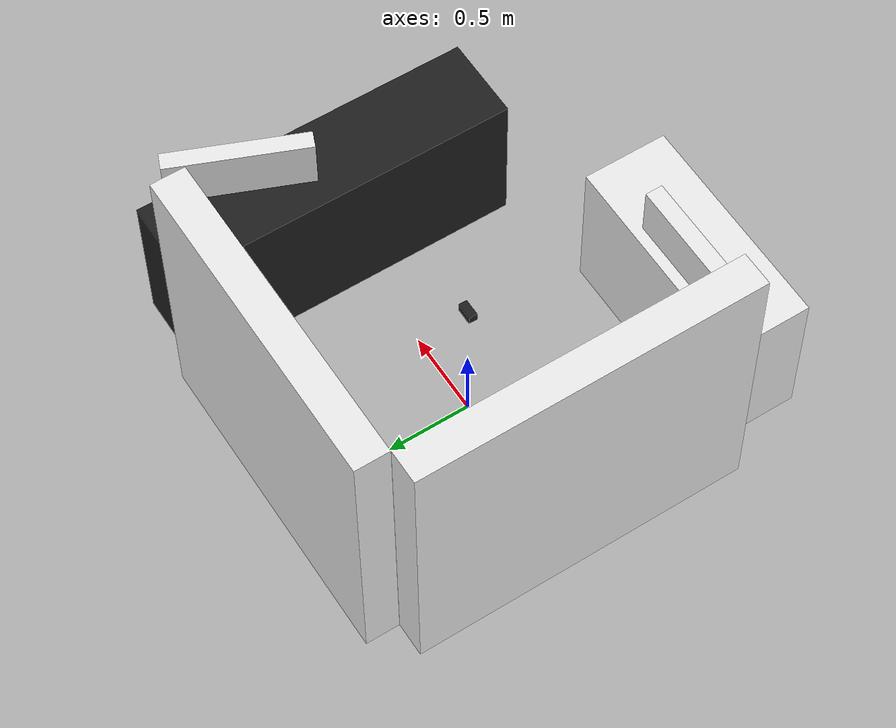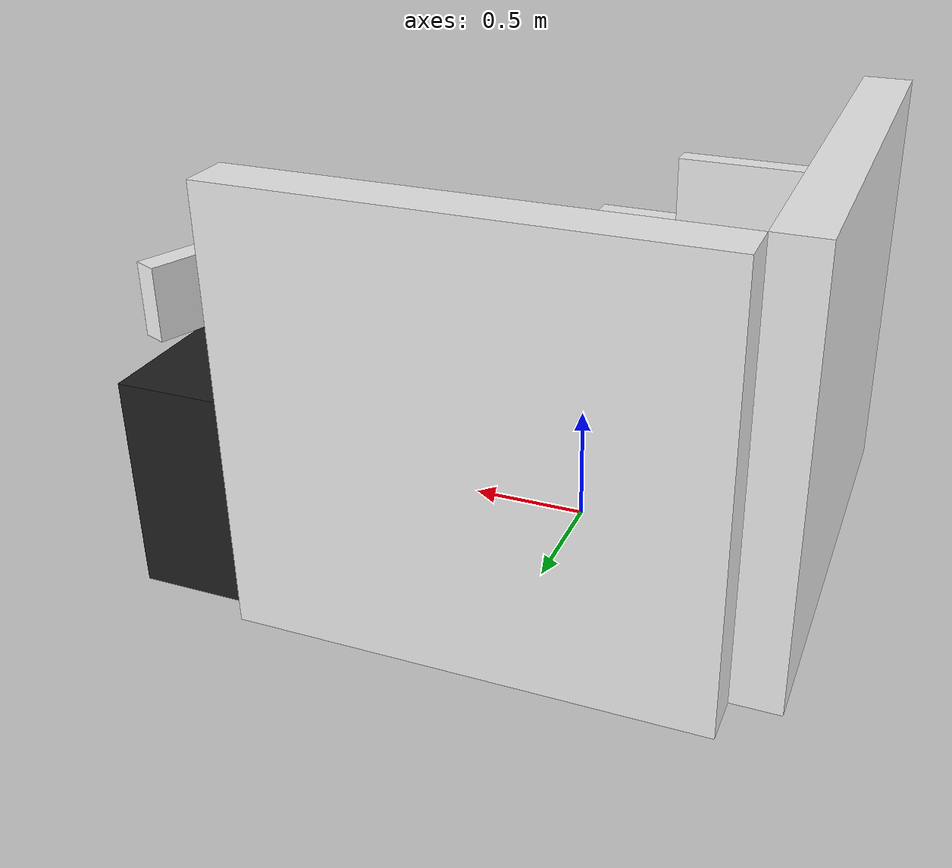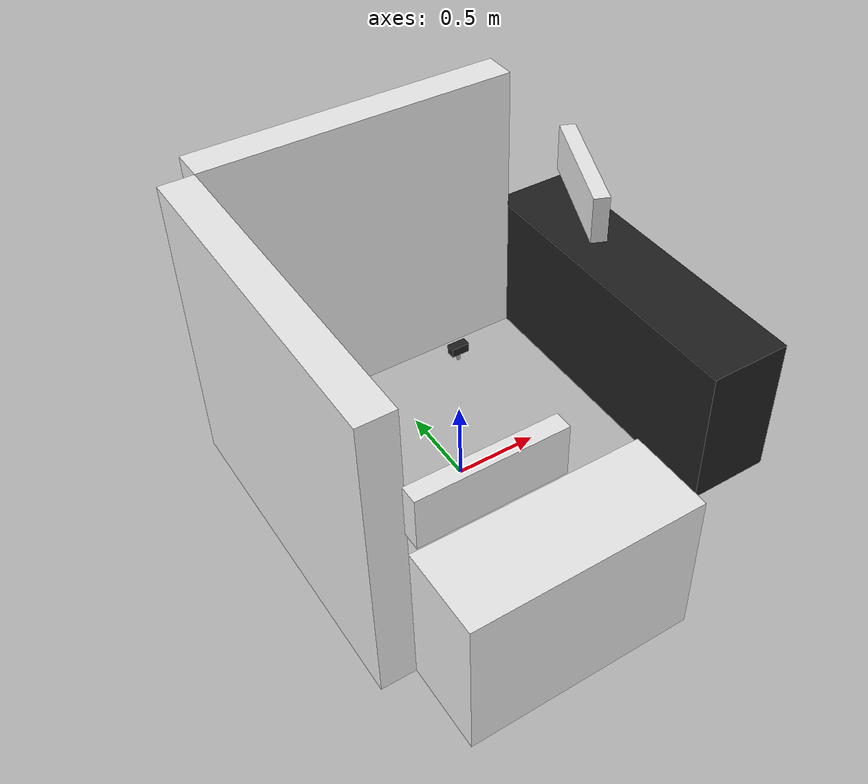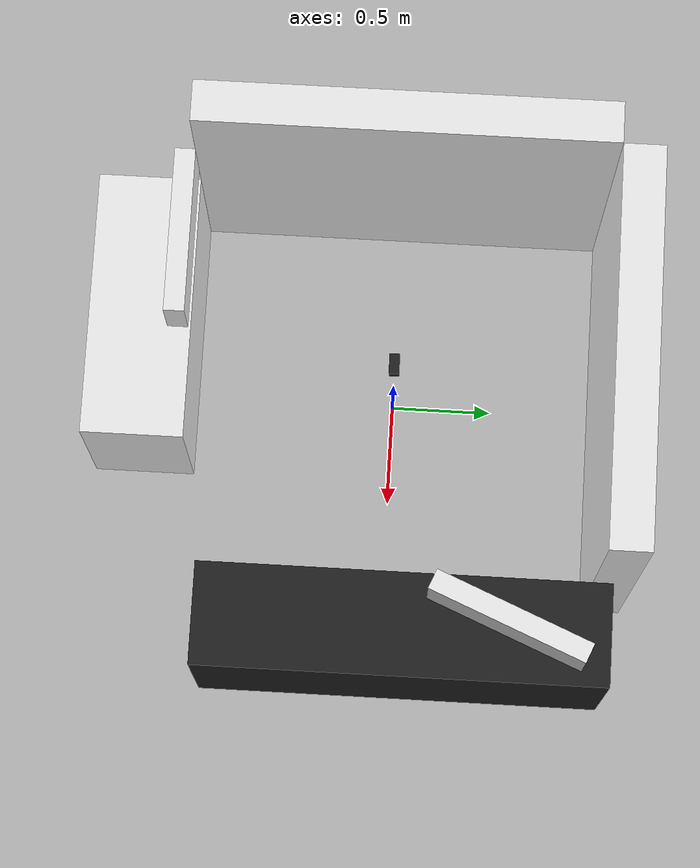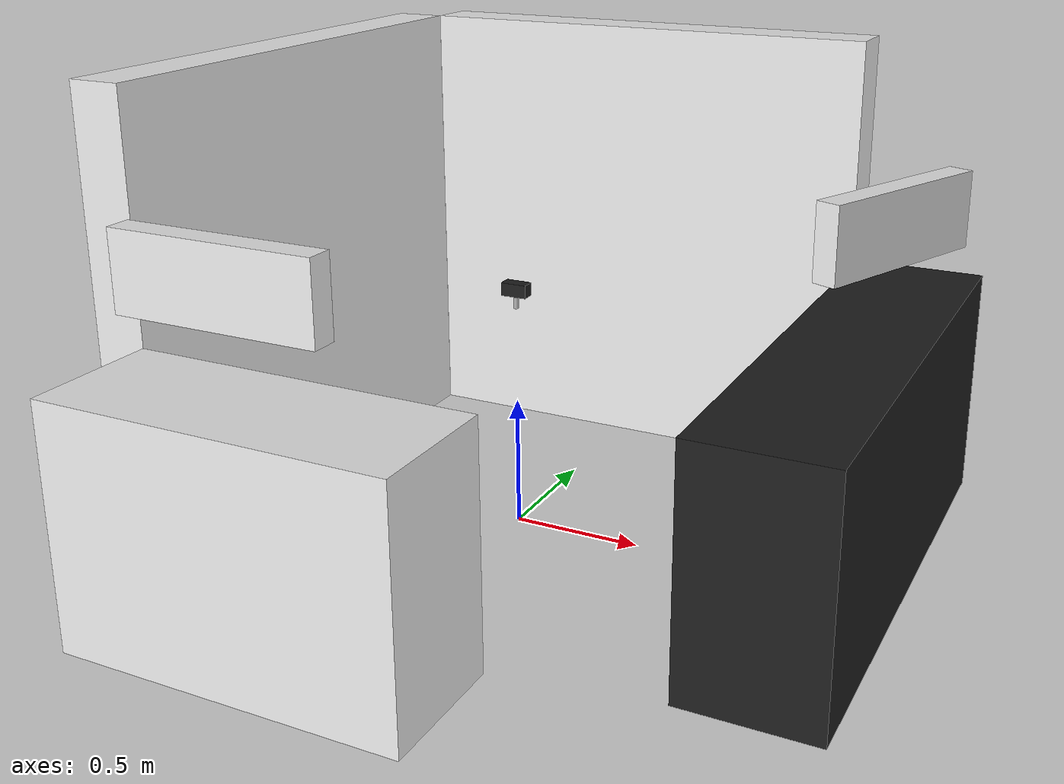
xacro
<?xml version="1.0" ?>
<robot name="lab_config" xmlns:xacro="http://www.ros.org/wiki/xacro">
<xacro:include filename="$(find rob_lab_mapping)/urdf/rob_lab_items_mesurments.xacro" />

      <link name="world"/>

      <link name="wall_1">
      <visual>
      <origin rpy="0 0 0" xyz="0 0 0"/>
      <geometry>
      <!-- size = w, h, l -->
      <box size="${first_wall_w} ${first_wall_l} ${first_wall_h}" />
      </geometry>
      <material name="white"/>
      </visual>
      <inertial>
      <origin xyz="0 0 0.0" rpy="0 0 0"/>
      <mass value="0.1"/>
      <inertia
      ixx="0.0" ixy="0.0" ixz="0.0"
      iyy="0.0" iyz="0.0"
      izz="0.0"/>
      </inertial>
      <collision>
      <origin rpy="0 0 0" xyz="0 0 0"/>
      <geometry>
      <box size="${first_wall_w} ${first_wall_l} ${first_wall_h}" />
      </geometry>
      </collision>
      </link>

         <link name="wall_2">
      <visual>
      <origin rpy="0 0 0" xyz="0 0 0"/>
      <geometry>
      <box size="${second_wall_w} ${second_wall_l} ${second_wall_h}" />
      </geometry>
      <material name="white"/>
      </visual>
      <inertial>
      <origin xyz="0 0 0.0" rpy="0 0 0"/>
      <mass value="0.1"/>
      <inertia
      ixx="0.0" ixy="0.0" ixz="0.0"
      iyy="0.0" iyz="0.0"
      izz="0.0"/>
      </inertial>
      <collision>
      <origin rpy="0 0 0" xyz="0 0 0"/>
      <geometry>
      <box size="${second_wall_w} ${second_wall_l} ${second_wall_h}" />
      </geometry>
      </collision>
      </link>

      <link name="table_1">
      <visual>
      <origin rpy="0 0 0" xyz="0 0 0"/>
      <geometry>
      <box size="${cmputer_table_1_w} ${cmputer_table_1_l} ${cmputer_table_1_h}" />
      </geometry>
      <material name="black"/>
      </visual>
      <inertial>
      <origin xyz="0 0 0.0" rpy="0 0 0"/>
      <mass value="0.1"/>
      <inertia
      ixx="0.0" ixy="0.0" ixz="0.0"
      iyy="0.0" iyz="0.0"
      izz="0.0"/>
      </inertial>
      <collision>
      <origin rpy="0 0 0" xyz="0 0 0"/>
      <geometry>
        <box size="${cmputer_table_1_w} ${cmputer_table_1_l} ${cmputer_table_1_h}" />
      </geometry>
      </collision>
      </link>

    <link name="table_2">
      <visual>
      <origin rpy="0 0 0" xyz="0 0 0"/>
      <geometry>
      <box size="${cmputer_table_2_w} ${cmputer_table_2_l} ${cmputer_table_2_h}" />
      </geometry>
      <material name="white"/>
      </visual>
      <inertial>
      <origin xyz="0 0 0.0" rpy="0 0 0"/>
      <mass value="0.1"/>
      <inertia
      ixx="0.0" ixy="0.0" ixz="0.0"
      iyy="0.0" iyz="0.0"
      izz="0.0"/>
      </inertial>
      <collision>
      <origin rpy="0 0 0" xyz="0 0 0"/>
      <geometry>
      <box size="${cmputer_table_2_w} ${cmputer_table_2_l} ${cmputer_table_2_h}" />
      </geometry>
      </collision>
      </link>

      <link name="comuter_1">
      <visual>
      <origin rpy="0 0 0" xyz="0 0 0"/>
      <geometry>
      <box size="${cmputer1_w} ${cmputer1_l} ${cmputer1_h}" />
      </geometry>
      <material name="white"/>
      </visual>
      <inertial>
      <origin xyz="0 0 0.0" rpy="0 0 0"/>
      <mass value="0.1"/>
      <inertia
      ixx="0.0" ixy="0.0" ixz="0.0"
      iyy="0.0" iyz="0.0"
      izz="0.0"/>
      </inertial>
      <collision>
      <origin rpy="0 0 0" xyz="0 0 0"/>
      <geometry>
      <box size="${cmputer1_w} ${cmputer1_l} ${cmputer1_h}" />
      </geometry>
      </collision>
      </link>

      <link name="comuter_2">
      <visual>
      <origin rpy="0 0 0" xyz="0 0 0"/>
      <geometry>
      <box size="${cmputer2_w} ${cmputer2_l} ${cmputer2_h}" />
      </geometry>
      <material name="white"/>
      </visual>
      <inertial>
      <origin xyz="0 0 0.0" rpy="0 0 0"/>
      <mass value="0.1"/>
      <inertia
      ixx="0.0" ixy="0.0" ixz="0.0"
      iyy="0.0" iyz="0.0"
      izz="0.0"/>
      </inertial>
      <collision>
      <origin rpy="0 0 ${3.14/6}" xyz="0 0 0"/>
      <geometry>
      <box size="${cmputer2_w} ${cmputer2_l} ${cmputer2_h}" />
      </geometry>
      </collision>
      </link>

  <!--CAMERA info-->
    <link name="camera_rail">
      <visual>
            <origin rpy="0 0 0" xyz="0 0 0" />
        <geometry>
          <cylinder radius="${camera_rail_r}" length="${camera_rail_l}" />
        </geometry>
      </visual>
      <inertial>
      <origin xyz="0 0 0.0" rpy="0 0 0"/>
      <mass value="0.1"/>
      <inertia
      ixx="0.0" ixy="0.0" ixz="0.0"
      iyy="0.0" iyz="0.0"
      izz="0.0"/>
      </inertial>
      <collision>
        <origin rpy="0 0 0" xyz="0 0 0" />
        <geometry>
          <cylinder radius="${camera_rail_r}" length="${camera_rail_l}" />
        </geometry>
      </collision>
      </link>

        <!-- Camera -->
  <link name="camera_link">
    <visual>
            <origin rpy="0 0 0" xyz="0 0 0" />
        <geometry>
          <box size="${camera_size*2} ${camera_size} ${camera_size}" />
        </geometry>
      </visual>
      <inertial>
      <origin xyz="0 0 0.0" rpy="0 0 0"/>
      <mass value="0.1"/>
      <inertia
      ixx="0.0" ixy="0.0" ixz="0.0"
      iyy="0.0" iyz="0.0"
      izz="0.0"/>
      </inertial>
      <collision>
        <origin rpy="0 0 0" xyz="0 0 0" />
        <geometry>
          <box size="${camera_size*2} ${camera_size} ${camera_size}" />
        </geometry>
      </collision>
    </link>
  <gazebo reference="camera_link">
  <sensor name="camera_link_sensor_name" type="depth">
    <update_rate>20</update_rate>
    <camera>
      <horizontal_fov>1.047198</horizontal_fov>
      <image>
        <width>640</width>
        <height>480</height>
        <format>R8G8B8</format>
      </image>
      <clip>
        <near>0.05</near>
        <far>3</far>
      </clip>
    </camera>
    <plugin name="camera_link_controller" filename="libgazebo_ros_openni_kinect.so">
      <baseline>0.2</baseline>
      <alwaysOn>true</alwaysOn>
      <updateRate>1.0</updateRate>
      <cameraName>camera_link_ir</cameraName>
      <imageTopicName>/camera_link/color/image_raw</imageTopicName>
      <cameraInfoTopicName>/camera_link/color/camera_info</cameraInfoTopicName>
      <depthImageTopicName>/camera_link/depth/image_raw</depthImageTopicName>
      <depthImageInfoTopicName>/camera_link/depth/camera_info</depthImageInfoTopicName>
      <pointCloudTopicName>/camera_link/depth/points</pointCloudTopicName>
      <frameName>camera_link</frameName>
      <pointCloudCutoff>0.5</pointCloudCutoff>
      <pointCloudCutoffMax>3.0</pointCloudCutoffMax>
      <distortionK1>0.00000001</distortionK1>
      <distortionK2>0.00000001</distortionK2>
      <distortionK3>0.00000001</distortionK3>
      <distortionT1>0.00000001</distortionT1>
      <distortionT2>0.00000001</distortionT2>
      <CxPrime>0</CxPrime>
      <Cx>0</Cx>
      <Cy>0</Cy>
      <focalLength>0</focalLength>
      <hackBaseline>0</hackBaseline>
    </plugin>
    </sensor>
    </gazebo>

      <!-- Joint List Start -->
      <joint name="world_to_table" type="fixed">
      <parent link="world"/>
      <child link="wall_1"/>
      <origin
      xyz="-1 0  ${first_wall_h/2}"
      rpy="0 0 0" />
      </joint>

      <joint name="wall_connection" type="fixed">
      <parent link="wall_1"/>
      <child link="wall_2"/>
      <origin
      xyz="${second_wall_l/2 + first_wall_w/2} ${first_wall_l/2 + second_wall_w/2} 0"
      rpy="0 0 ${3.14/2}" />
      </joint> >

      <joint name="table_1_wall_2" type="fixed">
      <parent link="wall_2"/>
      <child link="table_1"/>
      <origin
      xyz=" ${-cmputer_table_1_l/2}  ${-second_wall_l/2 - cmputer_table_1_w/2} ${-second_wall_h/2 + cmputer_table_1_h/2}"
      rpy="0 0 ${3.14/2}"/>
      </joint>

      <joint name="table_2_wall_1" type="fixed">
      <parent link="wall_1"/>
      <child link="table_2"/>
      <origin
      xyz=" ${cmputer_table_2_l/2 + first_wall_w/2} ${-first_wall_l/2 - cmputer_table_2_w/2 } ${-first_wall_h/2 + cmputer_table_2_h/2}"
      rpy="0 0  ${3.14/2}"/>
      </joint>

      <joint name="comutetr_on_tabl_1" type="fixed">
      <parent link="table_1"/>
      <child link="comuter_1"/>
      <origin
      xyz=" 0 ${-cmputer_table_1_l/4} ${cmputer_table_1_h/2 + cmputer1_h}"
      rpy="0 0  ${-3.14/8}"/>
      </joint>

      <joint name="comuter_2to_2" type="fixed">
      <parent link="table_2"/>
      <child link="comuter_2"/>
      <origin
      xyz=" ${cmputer_table_2_w/2 - cmputer2_w/2} ${cmputer_table_2_l/5}  ${cmputer_table_2_h/2 + cmputer2_h} "
      rpy="0 0  0"/>
      </joint>

    <!-- Camera_joints -->
   <joint name="world_to_rail" type="fixed">
      <parent link="world"/>
      <child link="camera_rail"/>
      <origin
      xyz="0 0 ${first_wall_h/2}"
      rpy="0 0 0" />
      </joint>

    <joint name="rail_to_camera" type="revolute">
      <parent link="camera_rail"/>
      <child link="camera_link"/>
      <origin
      xyz="0 0 ${camera_size}"
      rpy="0 0 0" />
      <axis xyz="0 0 1" />
      <limit lower="-6.27" upper="6.27" effort="22.54" velocity="17.4845"/>
      </joint>

    <!-- Colos list  -->
     <gazebo reference="wall_1">
        <material>Gazebo/white</material>
    </gazebo>
     <gazebo reference="wall_2">
        <material>Gazebo/white</material>
    </gazebo>

         <gazebo reference="table_1">
        <material>Gazebo/Wood</material>
    </gazebo>
     <gazebo reference="table_2">
        <material>Gazebo/Wood</material>
    </gazebo>

     <gazebo reference="comuter_1">
        <material>Gazebo/Black</material>
    </gazebo>
 <gazebo reference="comuter_2">
        <material>Gazebo/Black</material>
    </gazebo>

     <gazebo reference="camera_link">
        <material>Gazebo/Black</material>
    </gazebo>

    <gazebo>
        <static>true</static>
    </gazebo>

    <!-- Camera joint transmission list -->
      <transmission name="trans_camera">
      <type>transmission_interface/SimpleTransmission</type>
      <joint name="rail_to_camera">
      <hardwareInterface>hardware_interface/EffortJointInterface</hardwareInterface>
      </joint>
      <actuator name="motor_camera">
      <mechanicalReduction>1</mechanicalReduction>
      <hardwareInterface>hardware_interface/EffortJointInterface</hardwareInterface>
      </actuator>
      </transmission>

   <gazebo>
        <plugin name="gazebo_ros_control" filename="libgazebo_ros_control.so">
          <robotNamespace>/lab_config</robotNamespace>
        </plugin>

         </gazebo>
</robot>

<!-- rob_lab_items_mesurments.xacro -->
<robot xmlns:xacro="http://www.ros.org/wiki/xacro">

  <!-- first_wall_size-->
    <xacro:property name="first_wall_w" value="0.2" />
    <xacro:property name="first_wall_l" value="2" />
    <xacro:property name="first_wall_h" value="1.8" />

    <xacro:property name="second_wall_w" value="0.2" />
    <xacro:property name="second_wall_l" value="1.9" />
    <xacro:property name="second_wall_h" value="1.8" />

    <xacro:property name="cmputer_table_1_w" value="0.5" />
    <xacro:property name="cmputer_table_1_l" value="2" />
    <xacro:property name="cmputer_table_1_h" value="0.9" />

    <xacro:property name="cmputer_table_2_w" value="0.5" />
    <xacro:property name="cmputer_table_2_l" value="1.3" />
    <xacro:property name="cmputer_table_2_h" value="0.9" />

    <xacro:property name="cmputer1_w" value="0.1" />
    <xacro:property name="cmputer1_l" value="0.8" />
    <xacro:property name="cmputer1_h" value="0.3" />

    <xacro:property name="cmputer2_w" value="0.1" />
    <xacro:property name="cmputer2_l" value="0.8" />
    <xacro:property name="cmputer2_h" value="0.3" />

    <xacro:property name="camera_rail_r" value="0.01" />
    <xacro:property name="camera_rail_l" value="0.05" />

    <xacro:property name="camera_size" value="0.05" />

</robot>
